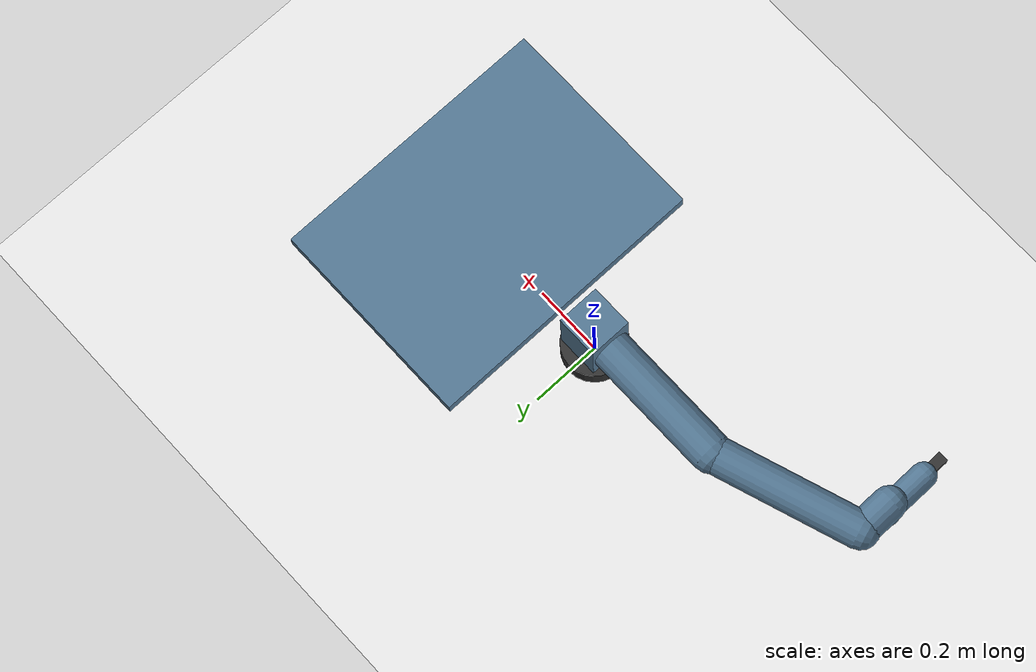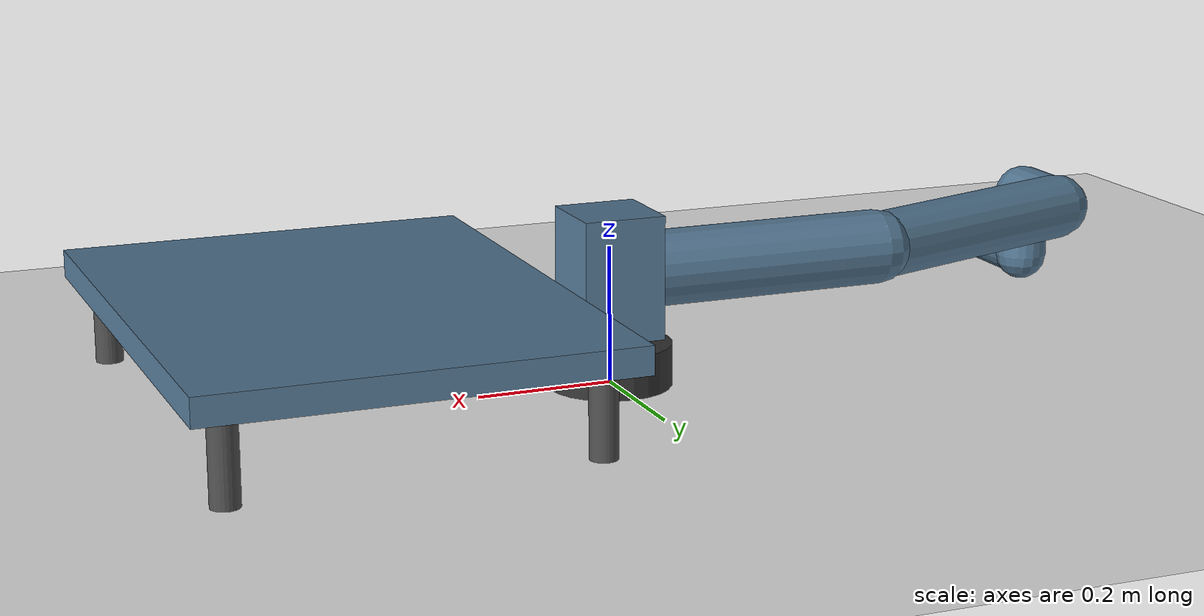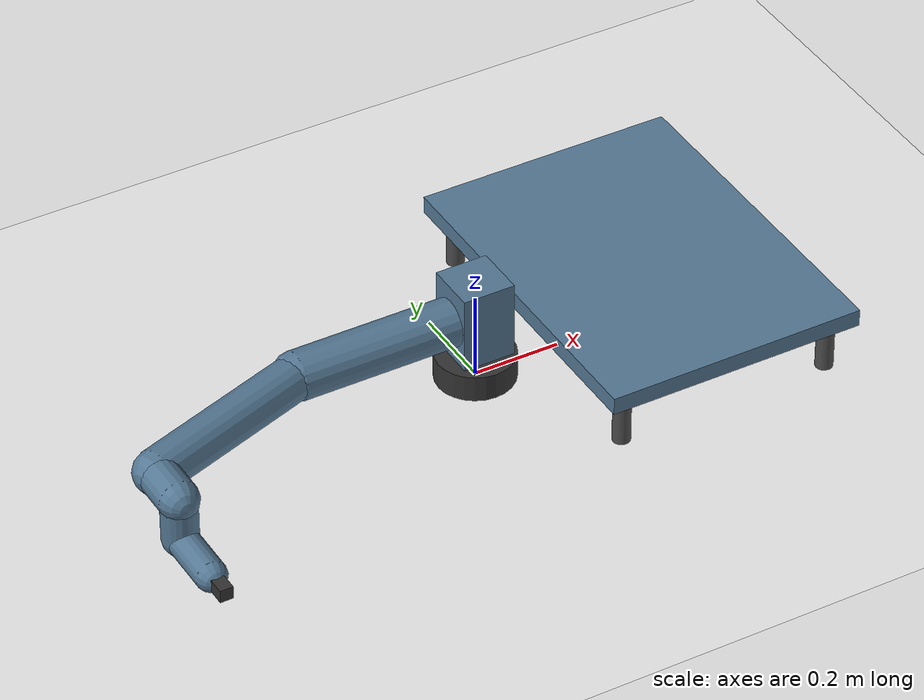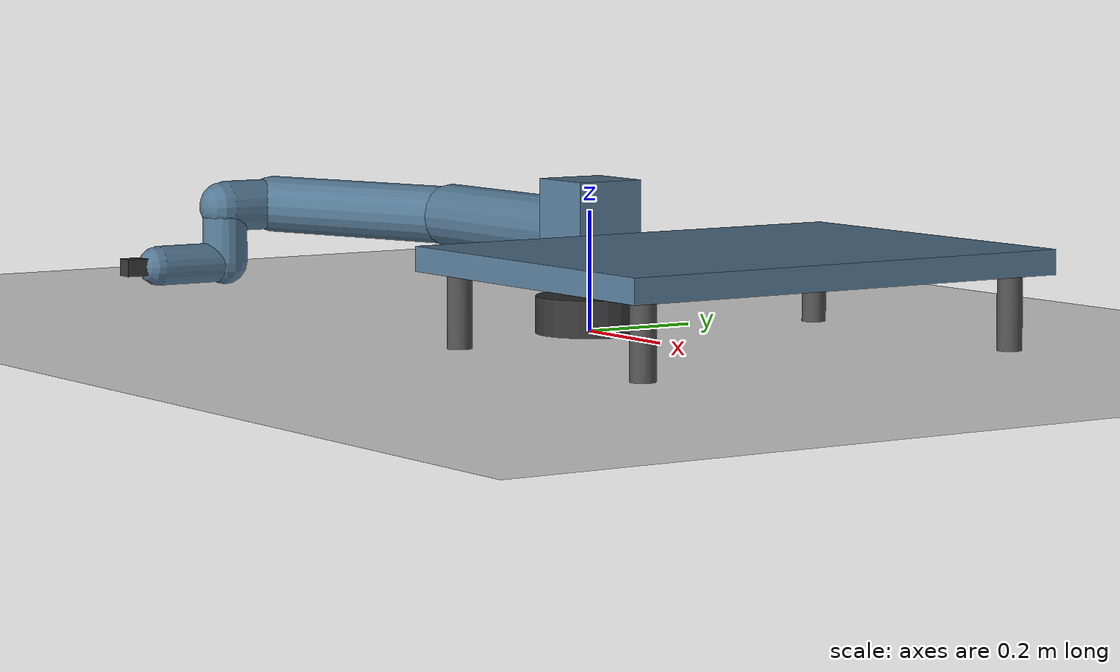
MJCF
<mujoco model="ur5e_lab3_scene_table">
  <!--
    Lab 3 Scene (Phase 3): UR5e with torque-mode actuators + table surface.
    Used for force control and capstone contact demo.
  -->
  <include file="ur5e.xml"/>

  <statistic center="0.3 0 0.5" extent="1.2"/>

  <visual>
    <headlight diffuse="0.6 0.6 0.6" ambient="0.3 0.3 0.3" specular="0 0 0"/>
    <rgba haze="0.15 0.25 0.35 1"/>
    <global azimuth="150" elevation="-25" offwidth="1920" offheight="1080"/>
  </visual>

  <asset>
    <texture type="skybox" builtin="gradient" rgb1="0.3 0.5 0.7" rgb2="0 0 0"
      width="512" height="3072"/>
    <texture type="2d" name="groundplane" builtin="checker" mark="edge"
      rgb1="0.2 0.3 0.4" rgb2="0.1 0.2 0.3" markrgb="0.8 0.8 0.8"
      width="300" height="300"/>
    <material name="groundplane" texture="groundplane" texuniform="true"
      texrepeat="5 5" reflectance="0.2"/>
    <material name="table_wood" rgba="0.55 0.35 0.20 1"/>
  </asset>

  <worldbody>
    <light pos="0 0 2.5" dir="0 0 -1" directional="true"/>
    <light pos="1.5 -1.5 2.0" dir="-0.5 0.5 -1" directional="false"/>
    <geom name="floor" size="0 0 0.05" type="plane" material="groundplane"/>

    <!-- Table surface for force control experiments -->
    <body name="table" pos="0.4 0.0 0.15">
      <geom name="table_top" type="box" size="0.3 0.4 0.02"
            material="table_wood" contype="2" conaffinity="2"
            solref="0.02 1.0" solimp="0.9 0.95 0.001 0.5 2"/>
      <!-- Table legs -->
      <geom type="cylinder" pos="-0.25 -0.35 -0.08" size="0.02 0.06" rgba="0.3 0.3 0.3 1" contype="0" conaffinity="0"/>
      <geom type="cylinder" pos="0.25 -0.35 -0.08" size="0.02 0.06" rgba="0.3 0.3 0.3 1" contype="0" conaffinity="0"/>
      <geom type="cylinder" pos="-0.25 0.35 -0.08" size="0.02 0.06" rgba="0.3 0.3 0.3 1" contype="0" conaffinity="0"/>
      <geom type="cylinder" pos="0.25 0.35 -0.08" size="0.02 0.06" rgba="0.3 0.3 0.3 1" contype="0" conaffinity="0"/>
    </body>
  </worldbody>

  <!-- Force sensor at end-effector -->
  <sensor>
    <force name="ee_force" site="tool_site"/>
  </sensor>
</mujoco>

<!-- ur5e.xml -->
<mujoco model="ur5e_lab3_torque">
  <compiler angle="radian" autolimits="true"/>
  <option timestep="0.001" gravity="0 0 -9.81" integrator="RK4"/>

  <default>
    <joint damping="1.0" armature="0.01" limited="true"/>
    <geom rgba="0.33 0.47 0.58 1" density="800" contype="1" conaffinity="1"/>
    <motor ctrllimited="true" ctrlrange="-180 180"/>
  </default>

  <worldbody>
    <geom type="plane" size="2 2 0.1" rgba="0.92 0.92 0.92 1"/>
    <body name="base" pos="0 0 0">
      <geom type="cylinder" size="0.09 0.06" rgba="0.20 0.20 0.20 1"/>
      <body name="shoulder" pos="0 0 0.1625" euler="0 0 0">
        <joint name="shoulder_pan_joint" axis="0 0 1" range="-6.28318530718 6.28318530718"/>
        <geom type="box" size="0.06 0.06 0.09"/>
        <body name="upper_arm" pos="0 0 0" euler="1.57079632679 0 0">
          <joint name="shoulder_lift_joint" axis="0 0 1" range="-6.28318530718 6.28318530718"/>
          <geom type="capsule" fromto="0 0 0 -0.425 0 0" size="0.055"/>
          <body name="forearm" pos="-0.425 0 0" euler="0 0 0">
            <joint name="elbow_joint" axis="0 0 1" range="-6.28318530718 6.28318530718"/>
            <geom type="capsule" fromto="0 0 0 -0.3922 0 0.1333" size="0.05"/>
            <body name="wrist_1" pos="-0.3922 0 0.1333" euler="0 0 0">
              <joint name="wrist_1_joint" axis="0 0 1" range="-6.28318530718 6.28318530718"/>
              <geom type="capsule" fromto="0 0 0 0 0 0.0997" size="0.045"/>
              <body name="wrist_2" pos="0 0 0.0997" euler="1.57079632679 0 0">
                <joint name="wrist_2_joint" axis="0 0 1" range="-6.28318530718 6.28318530718"/>
                <geom type="capsule" fromto="0 0 0 0 0 0.0996" size="0.04"/>
                <body name="wrist_3" pos="0 0 0.0996" euler="-1.57079632679 0 0">
                  <joint name="wrist_3_joint" axis="0 0 1" range="-6.28318530718 6.28318530718"/>
                  <geom type="capsule" fromto="0 0 0 0 0 0.135" size="0.035"/>
                  <body name="tool0" pos="0 0 0.135">
                    <geom type="box" size="0.015 0.015 0.0675" rgba="0.20 0.20 0.20 1"/>
                    <!-- Probe tip for table contact (contype=2 matches table conaffinity=2) -->
                    <geom name="probe_tip" type="sphere" size="0.01" pos="0 0 0"
                          contype="2" conaffinity="2" rgba="1 0.2 0.2 0.8"
                          density="0" mass="0"/>
                    <site name="tool_site" pos="0 0 0" size="0.012" rgba="1 0.2 0.2 1"/>
                  </body>
                </body>
              </body>
            </body>
          </body>
        </body>
      </body>
    </body>
  </worldbody>

  <actuator>
    <motor name="motor1" joint="shoulder_pan_joint"/>
    <motor name="motor2" joint="shoulder_lift_joint"/>
    <motor name="motor3" joint="elbow_joint"/>
    <motor name="motor4" joint="wrist_1_joint"/>
    <motor name="motor5" joint="wrist_2_joint"/>
    <motor name="motor6" joint="wrist_3_joint"/>
  </actuator>
</mujoco>
